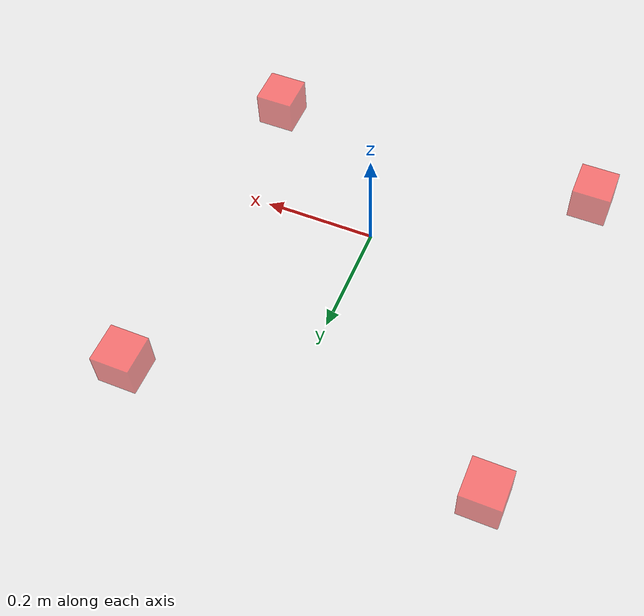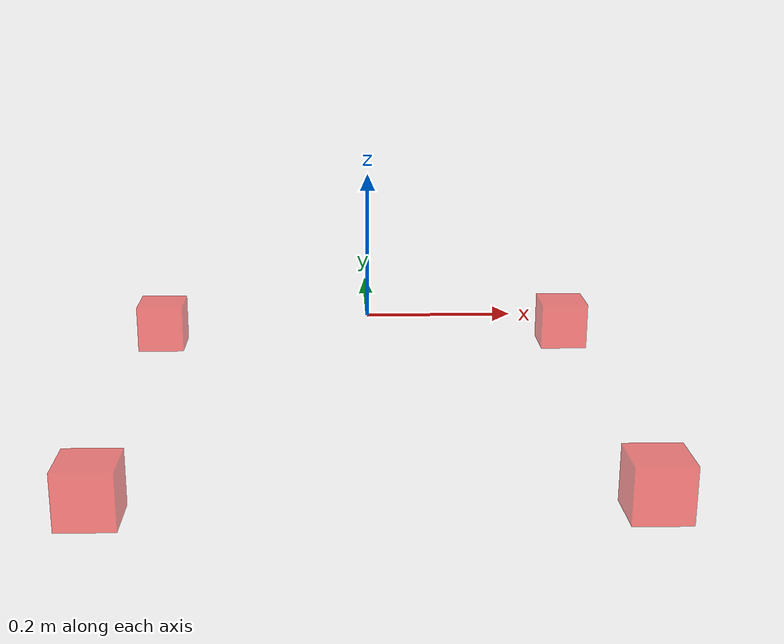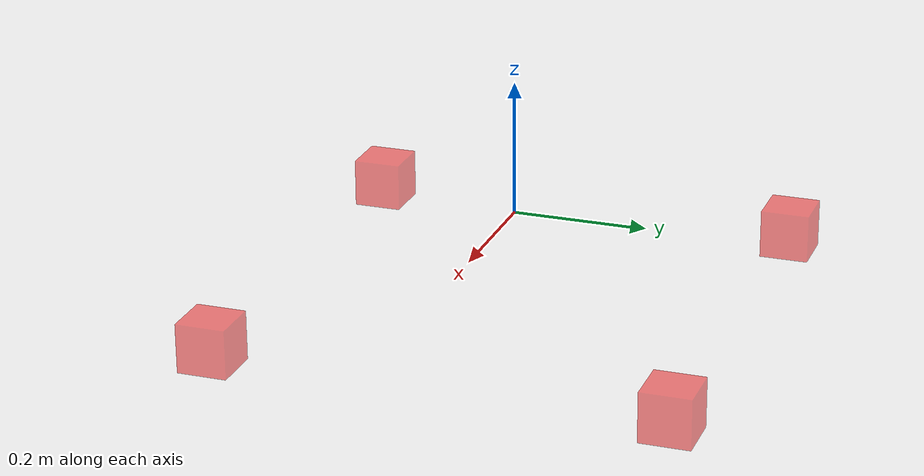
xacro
<?xml version="1.0"?>
<!-- Simple swerve base -->
<robot xmlns:xacro="http://www.ros.org/wiki/xacro" name="frcrobot">

	<!-- base width and depth -->
	<xacro:property name="base_height" value=".15" />
	<xacro:property name="base_width" value=".75" />
	<xacro:property name="base_depth" value=".75" />

	<xacro:property name="swerve_box_size" value=".075" />
	<xacro:property name="wheel_diameter" value=".0675" />

	<link name="base_link"/>

	<xacro:macro name="swerve_module" params="prefix x y">
		<link name="${prefix}_angle_link">
			<visual>
				<geometry>
					<box size="${swerve_box_size} ${swerve_box_size} ${swerve_box_size}"/>
				</geometry>
				<origin xyz="0 0 -${swerve_box_size / 2}" rpy="0 0 0"/>
				<material name="red">
					<color rgba="1 0 0 .5"/>
				</material>
			</visual>
			<origin xyz="0 0 -${swerve_box_size / 2}" rpy="0 0 0"/>
			<geometry>
				<box size="${swerve_box_size} ${swerve_box_size} ${swerve_box_size}"/>
			</geometry>
		</link>

		<joint name="${prefix}_angle" type="continuous">
			<parent link="base_link"/>
			<child link="${prefix}_angle_link"/>
			<origin xyz="${x} ${y} -${base_height/2}" rpy="0 0 0"/>
			<axis xyz="0 0 1" />
		</joint>
	</xacro:macro>

	<!-- NAMES ARE GUESSES -->
	<xacro:swerve_module prefix="bl" x="${base_width/2 - swerve_box_size/2}" y="${base_depth/2 - swerve_box_size/2}"/>
	<xacro:swerve_module prefix="br" x="${base_width/2 - swerve_box_size/2}" y="-${base_depth/2 - swerve_box_size/2}"/>
	<xacro:swerve_module prefix="fl" x="-${base_width/2 - swerve_box_size/2}" y="${base_depth/2 - swerve_box_size/2}"/>
	<xacro:swerve_module prefix="fr" x="-${base_width/2 - swerve_box_size/2}" y="-${base_depth/2 - swerve_box_size/2}"/>
</robot>
